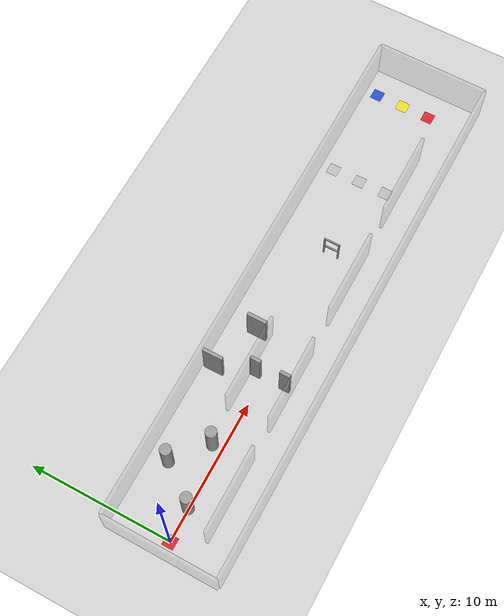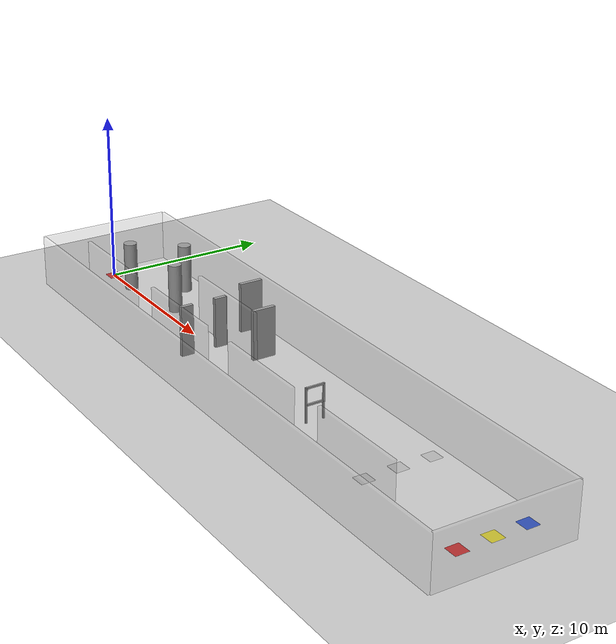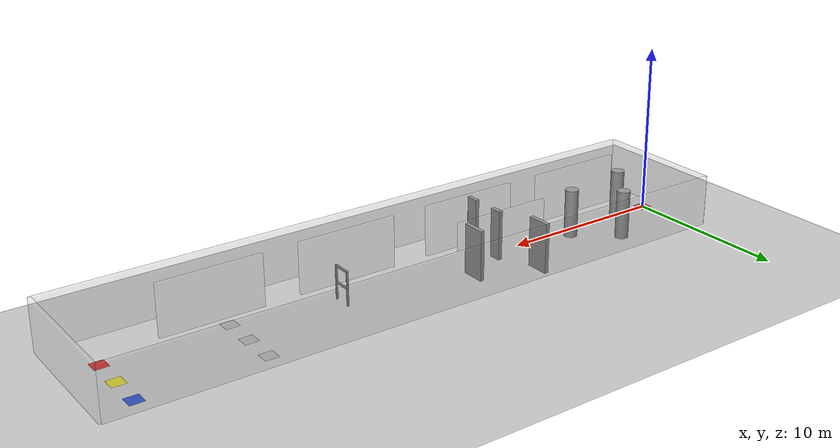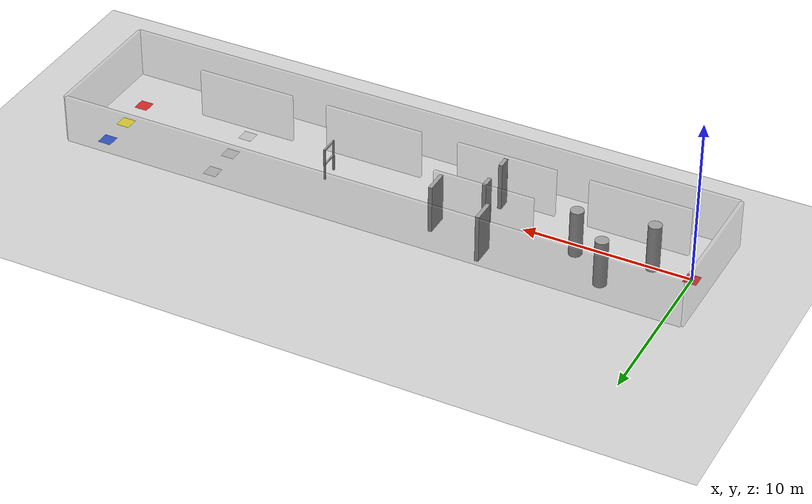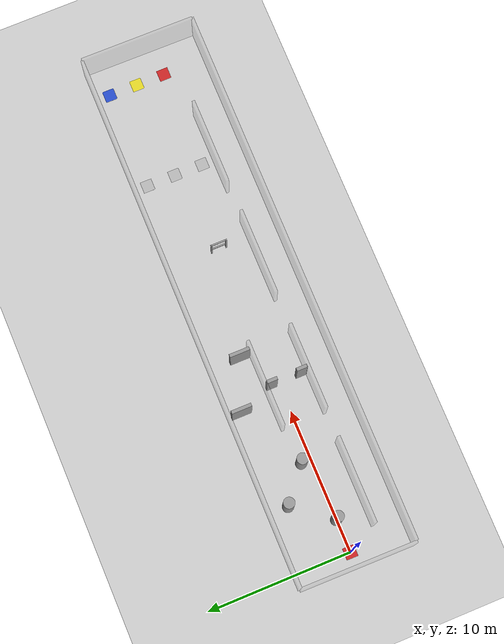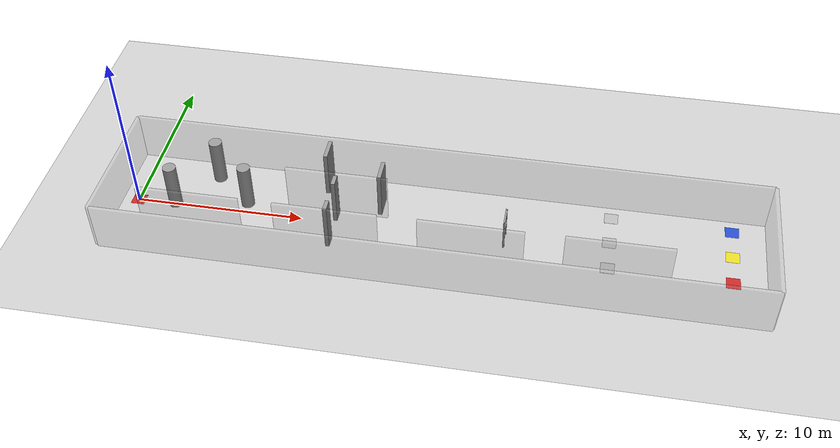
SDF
<sdf version="1.7">
 <world name="default">
  <light name="sun" type="directional">
   <pose>0 0 10 0 -0 0</pose>
   <diffuse>0.8 0.8 0.8 1</diffuse>
   <specular>0.2 0.2 0.2 1</specular>
   <attenuation>
    <range>1000</range>
    <constant>0.9</constant>
    <linear>0.01</linear>
    <quadratic>0.001</quadratic>
   </attenuation>
   <direction>-0.5 0.1 -0.9</direction>
   <spot><inner_angle>0</inner_angle><outer_angle>0</outer_angle><falloff>0</falloff></spot>
  </light>
  <model name="ground_plane">
   <static>1</static>
   <link name="link">
    <collision name="collision">
     <geometry><plane><normal>0 0 1</normal><size>100 100</size></plane></geometry>
     <surface><friction><ode><mu>100</mu><mu2>50</mu2></ode></friction></surface>
     <max_contacts>100</max_contacts>
    </collision>
    <visual name="visual">
     <cast_shadows>0</cast_shadows>
     <geometry><plane><normal>0 0 1</normal><size>100 100</size></plane></geometry>
     <material>
      <script><uri>file://media/materials/scripts/gazebo.material</uri><name>Gazebo/Grey</name></script>
     </material>
    </visual>
   </link>
  </model>
  <gravity>0 0 -9.8</gravity>
  <magnetic_field>6e-06 2.3e-05 -4.2e-05</magnetic_field>
  <atmosphere type="adiabatic"/>
  <physics type="ode">
   <max_step_size>0.001</max_step_size>
   <real_time_factor>1</real_time_factor>
   <real_time_update_rate>1000</real_time_update_rate>
  </physics>
  <scene><ambient>0.4 0.4 0.4 1</ambient><background>0.7 0.7 0.7 1</background><shadows>1</shadows></scene>
  <spherical_coordinates>
   <surface_model>EARTH_WGS84</surface_model>
   <latitude_deg>0</latitude_deg>
   <longitude_deg>0</longitude_deg>
   <elevation>0</elevation>
   <heading_deg>0</heading_deg>
  </spherical_coordinates>
  <model name="start_color">
   <static>1</static>
   <link name="link">
    <collision name="collision">
     <geometry><plane><normal>0 0 1</normal><size>0.8 0.8</size></plane></geometry>
     <surface><friction><ode><mu>100</mu><mu2>50</mu2></ode></friction></surface>
    </collision>
    <visual name="visual">
     <cast_shadows>0</cast_shadows>
     <geometry><plane><normal>0 0 1</normal><size>0.8 0.8</size></plane></geometry>
     <material>
      <script>
       <uri>file://media/materials/scripts/gazebo.material</uri>
       <uri>file://media/materials/scripts/gazebo.material</uri>
       <name>Gazebo/Red</name>
      </script>
     </material>
    </visual>
   </link>
   <pose>0 0 0.02 0 -0 0</pose>
  </model>
  <model name="yellow">
   <static>1</static>
   <link name="link">
    <collision name="collision">
     <geometry><plane><normal>0 0 1</normal><size>0.8 0.8</size></plane></geometry>
     <surface><friction><ode><mu>100</mu><mu2>50</mu2></ode></friction></surface>
    </collision>
    <visual name="visual">
     <cast_shadows>0</cast_shadows>
     <geometry><plane><normal>0 0 1</normal><size>0.8 0.8</size></plane></geometry>
     <material>
      <script>
       <uri>file://media/materials/scripts/gazebo.material</uri>
       <uri>file://media/materials/scripts/gazebo.material</uri>
       <name>Gazebo/Yellow</name>
      </script>
     </material>
    </visual>
   </link>
   <pose>35 1 0.02 0 -0 0</pose>
  </model>
  <model name="red">
   <static>1</static>
   <link name="link">
    <collision name="collision">
     <geometry><plane><normal>0 0 1</normal><size>0.8 0.8</size></plane></geometry>
     <surface><friction><ode><mu>100</mu><mu2>50</mu2></ode></friction></surface>
    </collision>
    <visual name="visual">
     <cast_shadows>0</cast_shadows>
     <geometry><plane><normal>0 0 1</normal><size>0.8 0.8</size></plane></geometry>
     <material>
      <script>
       <uri>file://media/materials/scripts/gazebo.material</uri>
       <uri>file://media/materials/scripts/gazebo.material</uri>
       <name>Gazebo/Red</name>
      </script>
     </material>
    </visual>
   </link>
   <pose>35 -1 0.02 0 -0 0</pose>
  </model>
  <model name="blue">
   <static>1</static>
   <link name="link">
    <collision name="collision">
     <geometry><plane><normal>0 0 1</normal><size>0.8 0.8</size></plane></geometry>
     <surface><friction><ode><mu>100</mu><mu2>50</mu2></ode></friction></surface>
    </collision>
    <visual name="visual">
     <cast_shadows>0</cast_shadows>
     <geometry><plane><normal>0 0 1</normal><size>0.8 0.8</size></plane></geometry>
     <material>
      <script>
       <uri>file://media/materials/scripts/gazebo.material</uri>
       <uri>file://media/materials/scripts/gazebo.material</uri>
       <name>Gazebo/Blue</name>
      </script>
     </material>
    </visual>
   </link>
   <pose>35 3 0.02 0 -0 0</pose>
  </model>
  <model name="letters">
   <static>1</static>
   <link name="link">
    <collision name="collision">
     <geometry><plane><normal>0 0 1</normal><size>0.8 0.8</size></plane></geometry>
     <surface><friction><ode><mu>100</mu><mu2>50</mu2></ode></friction></surface>
    </collision>
    <visual name="visual">
     <cast_shadows>0</cast_shadows>
     <geometry><plane><normal>0 0 1</normal><size>0.8 0.8</size></plane></geometry>
     <material>
      <script>
       <uri>model://letters/materials/scripts</uri>
       <uri>model://letters/materials/textures/</uri>
       <name>letters/A</name>
      </script>
     </material>
    </visual>
   </link>
   <pose>28 -1 0.02 0 0 -1.5708</pose>
  </model>
  <model name="qr_code">
   <static>1</static>
   <link name="link">
    <collision name="collision">
     <geometry><plane><normal>0 0 1</normal><size>0.8 0.8</size></plane></geometry>
     <surface><friction><ode><mu>100</mu><mu2>50</mu2></ode></friction></surface>
    </collision>
    <visual name="visual">
     <cast_shadows>0</cast_shadows>
     <geometry><plane><normal>0 0 1</normal><size>0.8 0.8</size></plane></geometry>
     <material>
      <script>
       <uri>model://qr_node/materials/scripts</uri>
       <uri>model://qr_node/materials/textures/</uri>
       <name>qr_node/qr_node</name>
      </script>
     </material>
    </visual>
   </link>
   <pose>28 1 0.02 0 -0 0</pose>
  </model>
  <model name="num1">
   <static>1</static>
   <link name="link">
    <collision name="collision">
     <geometry><plane><normal>0 0 1</normal><size>0.8 0.8</size></plane></geometry>
     <surface><friction><ode><mu>100</mu><mu2>50</mu2></ode></friction></surface>
    </collision>
    <visual name="visual">
     <cast_shadows>0</cast_shadows>
     <geometry><plane><normal>0 0 1</normal><size>0.8 0.8</size></plane></geometry>
     <material>
      <script>
       <uri>model://numbers/materials/scripts</uri>
       <uri>model://numbers/materials/textures/</uri>
       <name>numbers/1</name>
      </script>
     </material>
    </visual>
   </link>
   <pose>28 3 0.02 0 -0 0</pose>
  </model>
  <model name="Wall_0">
   <pose>-1.0607 0.011896 -0.000175 5.8e-05 -2e-06 -0.0072</pose>
   <link name="Wall_0">
    <collision name="Wall_0_Collision">
     <geometry><box><size>8 0.2 3</size></box></geometry>
     <pose>0 0 1.5 0 -0 0</pose>
    </collision>
    <visual name="Wall_0_Visual">
     <transparency>0.9</transparency>
     <pose>0 0 1.5 0 -0 0</pose>
     <geometry><box><size>8 0.2 3</size></box></geometry>
     <material>
      <script><uri>file://media/materials/scripts/gazebo.material</uri><name>Gazebo/Grey</name></script>
      <ambient>1 1 1 1</ambient>
     </material>
     <meta><layer>0</layer></meta>
    </visual>
    <pose>0 0 0 0 -0 1.5708</pose>
    <inertial>
     <inertia><ixx>1</ixx><ixy>0</ixy><ixz>0</ixz><iyy>1</iyy><iyz>0</iyz><izz>1</izz></inertia>
     <mass>1</mass>
    </inertial>
   </link>
   <static>1</static>
  </model>
  <model name="Wall_0_0">
   <pose>4 -2 -0.000175 -5.8e-05 -1e-06 -1.56878</pose>
   <link name="Wall_0">
    <collision name="Wall_0_Collision">
     <geometry><box><size>6 0.2 3</size></box></geometry>
     <pose>0 0 1.5 0 -0 0</pose>
    </collision>
    <visual name="Wall_0_Visual">
     <transparency>0.9</transparency>
     <pose>0 0 1.5 0 -0 0</pose>
     <geometry><box><size>6 0.2 3</size></box></geometry>
     <material>
      <script><uri>file://media/materials/scripts/gazebo.material</uri><name>Gazebo/Grey</name></script>
      <ambient>1 1 1 1</ambient>
     </material>
     <meta><layer>0</layer></meta>
    </visual>
    <pose>0 0 0 0 -0 1.5708</pose>
    <inertial>
     <inertia><ixx>1</ixx><ixy>0</ixy><ixz>0</ixz><iyy>1</iyy><iyz>0</iyz><izz>1</izz></inertia>
     <mass>1</mass>
    </inertial>
   </link>
   <static>1</static>
  </model>
  <model name="Wall_0_1">
   <pose>18 4 -0.001138 0.000242 4e-06 1.57</pose>
   <link name="Wall_0">
    <collision name="Wall_0_Collision">
     <geometry><box><size>38 0.2 3</size></box></geometry>
     <pose>0 0 1.5 0 -0 0</pose>
    </collision>
    <visual name="Wall_0_Visual">
     <transparency>0.9</transparency>
     <pose>0 0 1.5 0 -0 0</pose>
     <geometry><box><size>38 0.2 3</size></box></geometry>
     <material>
      <script><uri>file://media/materials/scripts/gazebo.material</uri><name>Gazebo/Grey</name></script>
      <ambient>1 1 1 1</ambient>
     </material>
     <meta><layer>0</layer></meta>
    </visual>
    <pose>0 0 0 0 -0 1.5708</pose>
    <inertial>
     <inertia><ixx>1</ixx><ixy>0</ixy><ixz>0</ixz><iyy>1</iyy><iyz>0</iyz><izz>1</izz></inertia>
     <mass>1</mass>
    </inertial>
   </link>
   <static>1</static>
  </model>
  <model name="gate">
   <static>1</static>
   <pose>22 0.2 0 0 0 -1.57</pose>
   <link name="link">
    <visual name="leg_left_visual">
     <pose>-0.525 0 1 0 -0 0</pose>
     <geometry><box><size>0.1 0.1 2</size></box></geometry>
     <material>
      <script><name>Gazebo/Grey</name><uri>file://media/materials/scripts/gazebo.material</uri></script>
     </material>
    </visual>
    <collision name="leg_left_collision">
     <pose>-0.525 0 1 0 -0 0</pose>
     <geometry><box><size>0.1 0.1 2</size></box></geometry>
    </collision>
    <visual name="leg_right_visual">
     <pose>0.525 0 1 0 -0 0</pose>
     <geometry><box><size>0.1 0.1 2</size></box></geometry>
     <material>
      <script><name>Gazebo/Grey</name><uri>file://media/materials/scripts/gazebo.material</uri></script>
     </material>
    </visual>
    <collision name="leg_right_collision">
     <pose>0.525 0 1 0 -0 0</pose>
     <geometry><box><size>0.1 0.1 2</size></box></geometry>
    </collision>
    <visual name="top_beam_visual">
     <pose>0 0 1.95 0 -0 0</pose>
     <geometry><box><size>1.05 0.1 0.1</size></box></geometry>
     <material>
      <script><name>Gazebo/Grey</name><uri>file://media/materials/scripts/gazebo.material</uri></script>
     </material>
    </visual>
    <collision name="top_beam_collision">
     <pose>0 0 1.95 0 -0 0</pose>
     <geometry><box><size>1.05 0.1 0.1</size></box></geometry>
    </collision>
    <visual name="middle_beam_visual">
     <pose>0 0 1 0 -0 0</pose>
     <geometry><box><size>1.05 0.1 0.1</size></box></geometry>
     <material>
      <script><name>Gazebo/Grey</name><uri>file://media/materials/scripts/gazebo.material</uri></script>
     </material>
    </visual>
    <collision name="middle_beam_collision">
     <pose>0 0 1 0 -0 0</pose>
     <geometry><box><size>1.05 0.1 0.1</size></box></geometry>
    </collision>
    <inertial>
     <mass>20</mass>
     <inertia><ixx>2</ixx><ixy>0</ixy><ixz>0</ixz><iyy>2</iyy><iyz>0</iyz><izz>2</izz></inertia>
    </inertial>
   </link>
  </model>
  <model name="Wall_0_1_clone">
   <pose>18 -4 -0.001138 0.000242 4e-06 1.56995</pose>
   <link name="Wall_0">
    <collision name="Wall_0_Collision">
     <geometry><box><size>38 0.2 3</size></box></geometry>
     <pose>0 0 1.5 0 -0 0</pose>
    </collision>
    <visual name="Wall_0_Visual">
     <transparency>0.9</transparency>
     <pose>0 0 1.5 0 -0 0</pose>
     <geometry><box><size>38 0.2 3</size></box></geometry>
     <material>
      <script><uri>file://media/materials/scripts/gazebo.material</uri><name>Gazebo/Grey</name></script>
      <ambient>1 1 1 1</ambient>
     </material>
     <meta><layer>0</layer></meta>
    </visual>
    <pose>0 0 0 0 -0 1.5708</pose>
    <inertial>
     <inertia><ixx>1</ixx><ixy>0</ixy><ixz>0</ixz><iyy>1</iyy><iyz>0</iyz><izz>1</izz></inertia>
     <mass>1</mass>
    </inertial>
   </link>
   <static>1</static>
  </model>
  <model name="Wall_0_0_clone">
   <pose>12 -2 -0.000175 -5.8e-05 -1e-06 -1.56878</pose>
   <link name="Wall_0">
    <collision name="Wall_0_Collision">
     <geometry><box><size>6 0.2 3</size></box></geometry>
     <pose>0 0 1.5 0 -0 0</pose>
    </collision>
    <visual name="Wall_0_Visual">
     <transparency>0.9</transparency>
     <pose>0 0 1.5 0 -0 0</pose>
     <geometry><box><size>6 0.2 3</size></box></geometry>
     <material>
      <script><uri>file://media/materials/scripts/gazebo.material</uri><name>Gazebo/Grey</name></script>
      <ambient>1 1 1 1</ambient>
     </material>
     <meta><layer>0</layer></meta>
    </visual>
    <pose>0 0 0 0 -0 1.5708</pose>
    <inertial>
     <inertia><ixx>1</ixx><ixy>0</ixy><ixz>0</ixz><iyy>1</iyy><iyz>0</iyz><izz>1</izz></inertia>
     <mass>1</mass>
    </inertial>
   </link>
   <static>1</static>
  </model>
  <model name="Wall_0_0_clone_0">
   <pose>20.2785 -1.94679 -0.000175 -5.8e-05 -1e-06 -1.56878</pose>
   <link name="Wall_0">
    <collision name="Wall_0_Collision">
     <geometry><box><size>6 0.2 3</size></box></geometry>
     <pose>0 0 1.5 0 -0 0</pose>
    </collision>
    <visual name="Wall_0_Visual">
     <transparency>0.9</transparency>
     <pose>0 0 1.5 0 -0 0</pose>
     <geometry><box><size>6 0.2 3</size></box></geometry>
     <material>
      <script><uri>file://media/materials/scripts/gazebo.material</uri><name>Gazebo/Grey</name></script>
      <ambient>1 1 1 1</ambient>
     </material>
     <meta><layer>0</layer></meta>
    </visual>
    <pose>0 0 0 0 -0 1.5708</pose>
    <inertial>
     <inertia><ixx>1</ixx><ixy>0</ixy><ixz>0</ixz><iyy>1</iyy><iyz>0</iyz><izz>1</izz></inertia>
     <mass>1</mass>
    </inertial>
   </link>
   <static>1</static>
  </model>
  <model name="Wall_0_0_clone_1">
   <pose>12 1 -0.000175 -5.8e-05 -1e-06 -1.56878</pose>
   <link name="Wall_0">
    <collision name="Wall_0_Collision">
     <geometry><box><size>6 0.2 3</size></box></geometry>
     <pose>0 0 1.5 0 -0 0</pose>
    </collision>
    <visual name="Wall_0_Visual">
     <transparency>0.9</transparency>
     <pose>0 0 1.5 0 -0 0</pose>
     <geometry><box><size>6 0.2 3</size></box></geometry>
     <material>
      <script><uri>file://media/materials/scripts/gazebo.material</uri><name>Gazebo/Grey</name></script>
      <ambient>1 1 1 1</ambient>
     </material>
     <meta><layer>0</layer></meta>
    </visual>
    <pose>0 0 0 0 -0 1.5708</pose>
    <inertial>
     <inertia><ixx>1</ixx><ixy>0</ixy><ixz>0</ixz><iyy>1</iyy><iyz>0</iyz><izz>1</izz></inertia>
     <mass>1</mass>
    </inertial>
   </link>
   <static>1</static>
  </model>
  <model name="unit_box_clone_0_clone">
   <pose>12.0125 -1.54976 1.46679 0 -0 4.2e-05</pose>
   <link name="link">
    <inertial>
     <mass>1</mass>
     <inertia>
      <ixx>0.166667</ixx>
      <ixy>0</ixy>
      <ixz>0</ixz>
      <iyy>0.166667</iyy>
      <iyz>0</iyz>
      <izz>0.166667</izz>
     </inertia>
    </inertial>
    <collision name="collision"><geometry><box><size>0.232006 0.742912 2.93358</size></box></geometry></collision>
    <visual name="visual">
     <geometry><box><size>0.232006 0.742912 2.93358</size></box></geometry>
     <material>
      <script><name>Gazebo/Grey</name><uri>file://media/materials/scripts/gazebo.material</uri></script>
     </material>
    </visual>
   </link>
   <static>1</static>
  </model>
  <model name="unit_box_clone_clone">
   <pose>11.0326 3.09836 1.46679 2e-06 -0 0.000128</pose>
   <link name="link">
    <inertial>
     <mass>1</mass>
     <inertia>
      <ixx>0.166667</ixx>
      <ixy>0</ixy>
      <ixz>0</ixz>
      <iyy>0.166667</iyy>
      <iyz>0</iyz>
      <izz>0.166667</izz>
     </inertia>
    </inertial>
    <collision name="collision"><geometry><box><size>0.232006 1.38966 2.93358</size></box></geometry></collision>
    <visual name="visual">
     <geometry><box><size>0.232006 1.38966 2.93358</size></box></geometry>
     <material>
      <script><name>Gazebo/Grey</name><uri>file://media/materials/scripts/gazebo.material</uri></script>
     </material>
    </visual>
   </link>
   <static>1</static>
  </model>
  <model name="Wall_0_0_clone_0_clone">
   <pose>28.4807 -1.87006 -0.000175 -5.8e-05 -1e-06 -1.56878</pose>
   <link name="Wall_0">
    <collision name="Wall_0_Collision">
     <geometry><box><size>6 0.2 3</size></box></geometry>
     <pose>0 0 1.5 0 -0 0</pose>
    </collision>
    <visual name="Wall_0_Visual">
     <transparency>0.9</transparency>
     <pose>0 0 1.5 0 -0 0</pose>
     <geometry><box><size>6 0.2 3</size></box></geometry>
     <material>
      <script><uri>file://media/materials/scripts/gazebo.material</uri><name>Gazebo/Grey</name></script>
      <ambient>1 1 1 1</ambient>
     </material>
     <meta><layer>0</layer></meta>
    </visual>
    <pose>0 0 0 0 -0 1.5708</pose>
    <inertial>
     <inertia><ixx>1</ixx><ixy>0</ixy><ixz>0</ixz><iyy>1</iyy><iyz>0</iyz><izz>1</izz></inertia>
     <mass>1</mass>
    </inertial>
   </link>
   <static>1</static>
  </model>
  <model name="unit_cylinder">
   <pose>4.26609 2.60156 1.46199 0 0 -1e-06</pose>
   <link name="link">
    <inertial>
     <mass>1</mass>
     <inertia><ixx>0.145833</ixx><ixy>0</ixy><ixz>0</ixz><iyy>0.145833</iyy><iyz>0</iyz><izz>0.125</izz></inertia>
    </inertial>
    <collision name="collision">
     <geometry><cylinder><radius>0.389682</radius><length>2.88398</length></cylinder></geometry>
    </collision>
    <visual name="visual">
     <geometry><cylinder><radius>0.389682</radius><length>2.88398</length></cylinder></geometry>
     <material>
      <script><name>Gazebo/Grey</name><uri>file://media/materials/scripts/gazebo.material</uri></script>
     </material>
    </visual>
   </link>
   <static>1</static>
  </model>
  <model name="unit_cylinder_clone">
   <pose>6.54852 0.706577 1.46199 0 0 -1e-06</pose>
   <link name="link">
    <inertial>
     <mass>1</mass>
     <inertia><ixx>0.145833</ixx><ixy>0</ixy><ixz>0</ixz><iyy>0.145833</iyy><iyz>0</iyz><izz>0.125</izz></inertia>
    </inertial>
    <collision name="collision">
     <geometry><cylinder><radius>0.389682</radius><length>2.88398</length></cylinder></geometry>
    </collision>
    <visual name="visual">
     <geometry><cylinder><radius>0.389682</radius><length>2.88398</length></cylinder></geometry>
     <material>
      <script><name>Gazebo/Grey</name><uri>file://media/materials/scripts/gazebo.material</uri></script>
     </material>
    </visual>
   </link>
   <static>1</static>
  </model>
  <model name="unit_cylinder_clone_0">
   <pose>2.28857 0.028506 1.46199 0 0 -1e-06</pose>
   <link name="link">
    <inertial>
     <mass>1</mass>
     <inertia><ixx>0.145833</ixx><ixy>0</ixy><ixz>0</ixz><iyy>0.145833</iyy><iyz>0</iyz><izz>0.125</izz></inertia>
    </inertial>
    <collision name="collision">
     <geometry><cylinder><radius>0.389682</radius><length>2.88398</length></cylinder></geometry>
    </collision>
    <visual name="visual">
     <geometry><cylinder><radius>0.389682</radius><length>2.88398</length></cylinder></geometry>
     <material>
      <script><name>Gazebo/Grey</name><uri>file://media/materials/scripts/gazebo.material</uri></script>
     </material>
    </visual>
   </link>
   <static>1</static>
  </model>
  <model name="unit_box_clone_clone_clone">
   <pose>14.5 1.80211 1.46679 2e-06 -0 0.000128</pose>
   <link name="link">
    <inertial>
     <mass>1</mass>
     <inertia>
      <ixx>0.166667</ixx>
      <ixy>0</ixy>
      <ixz>0</ixz>
      <iyy>0.166667</iyy>
      <iyz>0</iyz>
      <izz>0.166667</izz>
     </inertia>
    </inertial>
    <collision name="collision"><geometry><box><size>0.232006 1.38966 2.93358</size></box></geometry></collision>
    <visual name="visual">
     <geometry><box><size>0.232006 1.38966 2.93358</size></box></geometry>
     <material>
      <script><name>Gazebo/Grey</name><uri>file://media/materials/scripts/gazebo.material</uri></script>
     </material>
    </visual>
   </link>
   <static>1</static>
  </model>
  <model name="unit_box_clone_0_clone_clone">
   <pose>12 0.557627 1.46679 0 -0 4.2e-05</pose>
   <link name="link">
    <inertial>
     <mass>1</mass>
     <inertia>
      <ixx>0.166667</ixx>
      <ixy>0</ixy>
      <ixz>0</ixz>
      <iyy>0.166667</iyy>
      <iyz>0</iyz>
      <izz>0.166667</izz>
     </inertia>
    </inertial>
    <collision name="collision"><geometry><box><size>0.232006 0.742912 2.93358</size></box></geometry></collision>
    <visual name="visual">
     <geometry><box><size>0.232006 0.742912 2.93358</size></box></geometry>
     <material>
      <script><name>Gazebo/Grey</name><uri>file://media/materials/scripts/gazebo.material</uri></script>
     </material>
    </visual>
   </link>
   <static>1</static>
  </model>
  <model name="Wall_0_clone">
   <pose>37 -0.008157 -0.000175 5.8e-05 -2e-06 -0.0072</pose>
   <link name="Wall_0">
    <collision name="Wall_0_Collision">
     <geometry><box><size>8 0.2 3</size></box></geometry>
     <pose>0 0 1.5 0 -0 0</pose>
    </collision>
    <visual name="Wall_0_Visual">
     <transparency>0.9</transparency>
     <pose>0 0 1.5 0 -0 0</pose>
     <geometry><box><size>8 0.2 3</size></box></geometry>
     <material>
      <script><uri>file://media/materials/scripts/gazebo.material</uri><name>Gazebo/Grey</name></script>
      <ambient>1 1 1 1</ambient>
     </material>
     <meta><layer>0</layer></meta>
    </visual>
    <pose>0 0 0 0 -0 1.5708</pose>
    <inertial>
     <inertia><ixx>1</ixx><ixy>0</ixy><ixz>0</ixz><iyy>1</iyy><iyz>0</iyz><izz>1</izz></inertia>
     <mass>1</mass>
    </inertial>
   </link>
   <static>1</static>
  </model>
 </world>
</sdf>
